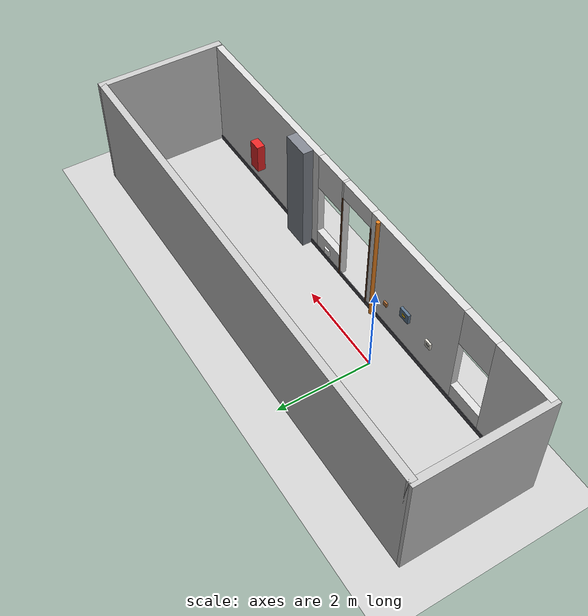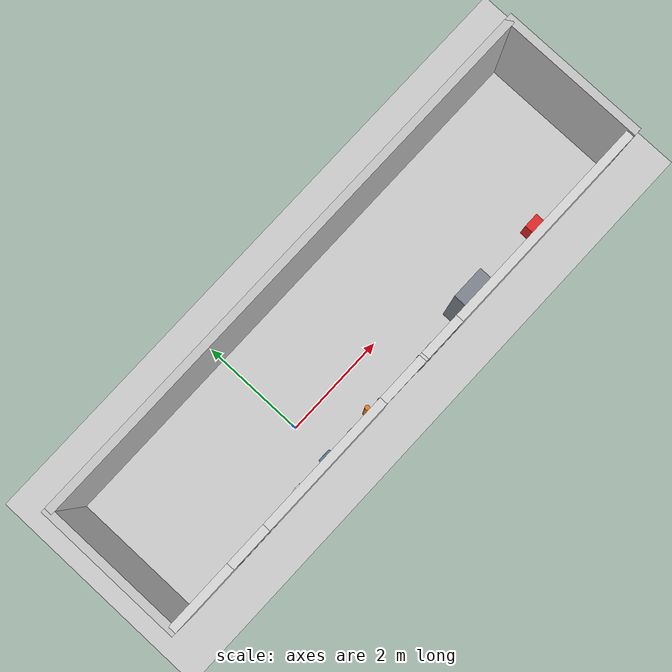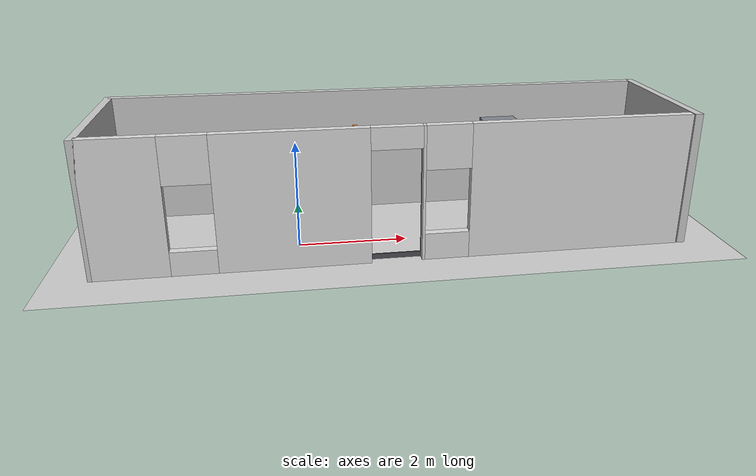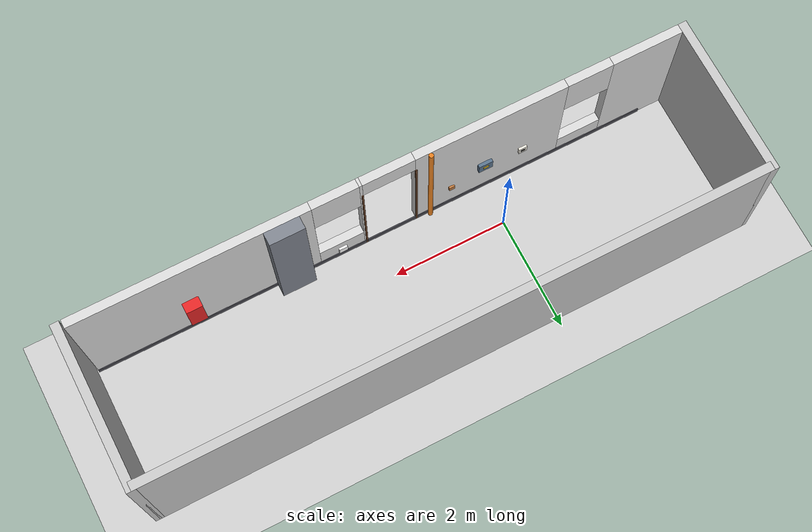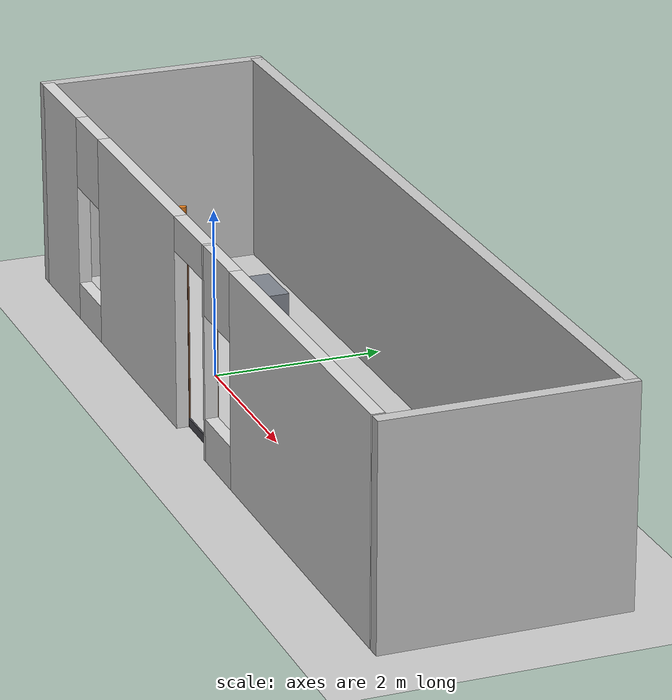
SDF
<?xml version="1.0" ?>
<sdf version="1.6">
  <world name="wall_obstacle_world">

    <!-- Physics settings -->
    <physics type="ode">
      <max_step_size>0.001</max_step_size>
      <real_time_factor>1.0</real_time_factor>
      <real_time_update_rate>1000</real_time_update_rate>
    </physics>

    <!-- Sun / Primary light -->
    <include>
      <uri>model://sun</uri>
    </include>

    <!-- Ground plane -->
    <include>
      <uri>model://ground_plane</uri>
    </include>

    <!-- Additional Ambient Lighting for Wall Inspection -->
    <light name="fill_light_1" type="point">
      <pose>1.5 -0.2 3.0 0 0 0</pose>
      <diffuse>0.8 0.8 0.8 1</diffuse>
      <specular>0.2 0.2 0.2 1</specular>
      <attenuation>
        <range>20</range>
        <constant>0.5</constant>
        <linear>0.05</linear>
        <quadratic>0.01</quadratic>
      </attenuation>
      <cast_shadows>false</cast_shadows>
    </light>

    <light name="fill_light_2" type="point">
      <pose>4.5 -0.2 3.0 0 0 0</pose>
      <diffuse>0.8 0.8 0.8 1</diffuse>
      <specular>0.2 0.2 0.2 1</specular>
      <attenuation>
        <range>20</range>
        <constant>0.5</constant>
        <linear>0.05</linear>
        <quadratic>0.01</quadratic>
      </attenuation>
      <cast_shadows>false</cast_shadows>
    </light>

    <!-- Initial GUI Camera View: Looking at Robot and Wall -->
    <gui>
      <camera name="user_camera">
        <pose>-1.8 1.8 2.2 0 0.45 -0.65</pose>
        <view_controller>orbit</view_controller>
      </camera>
    </gui>

    <!-- INSPECTION WALL SYSTEM                                            -->
    <!-- Baseline wall surface inner face is at Y = -0.750 m               -->
    <!-- Thickness: 0.15 m -> Wall Center at Y = -0.825 m                  -->
    <!-- Height: 2.50 m                                                    -->
    <model name="inspection_wall_system">
      <static>true</static>
      <pose>0 0 0 0 0 0</pose>

      <link name="wall_link">

        <!-- Section A: Wall before cutout (from X = -3.5 to X = -2.2) -->
        <collision name="col_wall_a">
          <pose>-2.85 -0.825 1.25 0 0 0</pose>
          <geometry><box><size>1.30 0.15 2.50</size></box></geometry>
        </collision>
        <visual name="vis_wall_a">
          <pose>-2.85 -0.825 1.25 0 0 0</pose>
          <geometry><box><size>1.30 0.15 2.50</size></box></geometry>
          <material>
            <ambient>0.82 0.82 0.82 1.0</ambient>
            <diffuse>0.85 0.85 0.85 1.0</diffuse>
          </material>
        </visual>

        <!-- Cutout Sill / Lintel: Wall below and above window cutout (X = -2.2 to -1.4) -->
        <!-- Below opening (Z = 0.0 to 0.45) -->
        <collision name="col_wall_window_sill">
          <pose>-1.80 -0.825 0.225 0 0 0</pose>
          <geometry><box><size>0.80 0.15 0.45</size></box></geometry>
        </collision>
        <visual name="vis_wall_window_sill">
          <pose>-1.80 -0.825 0.225 0 0 0</pose>
          <geometry><box><size>0.80 0.15 0.45</size></box></geometry>
          <material>
            <ambient>0.82 0.82 0.82 1.0</ambient>
            <diffuse>0.85 0.85 0.85 1.0</diffuse>
          </material>
        </visual>

        <!-- Above opening (Z = 1.65 to 2.50) -->
        <collision name="col_wall_window_top">
          <pose>-1.80 -0.825 2.075 0 0 0</pose>
          <geometry><box><size>0.80 0.15 0.85</size></box></geometry>
        </collision>
        <visual name="vis_wall_window_top">
          <pose>-1.80 -0.825 2.075 0 0 0</pose>
          <geometry><box><size>0.80 0.15 0.85</size></box></geometry>
          <material>
            <ambient>0.82 0.82 0.82 1.0</ambient>
            <diffuse>0.85 0.85 0.85 1.0</diffuse>
          </material>
        </visual>

        <!-- Section B1a: Wall from X = -1.4 to X = +1.25 (length = 2.65m, center = -0.075m) -->
        <collision name="col_wall_b1a">
          <pose>-0.075 -0.825 1.25 0 0 0</pose>
          <geometry><box><size>2.65 0.15 2.50</size></box></geometry>
        </collision>
        <visual name="vis_wall_b1a">
          <pose>-0.075 -0.825 1.25 0 0 0</pose>
          <geometry><box><size>2.65 0.15 2.50</size></box></geometry>
          <material>
            <ambient>0.82 0.82 0.82 1.0</ambient>
            <diffuse>0.85 0.85 0.85 1.0</diffuse>
          </material>
        </visual>

        <!-- Section B1b: Wall after doorway from X = 2.15 to X = 2.20 (length = 0.05m) -->
        <collision name="col_wall_b1b">
          <pose>2.175 -0.825 1.25 0 0 0</pose>
          <geometry><box><size>0.05 0.15 2.50</size></box></geometry>
        </collision>
        <visual name="vis_wall_b1b">
          <pose>2.175 -0.825 1.25 0 0 0</pose>
          <geometry><box><size>0.05 0.15 2.50</size></box></geometry>
          <material>
            <ambient>0.82 0.82 0.82 1.0</ambient>
            <diffuse>0.85 0.85 0.85 1.0</diffuse>
          </material>
        </visual>

        <!-- Window Cutout 2: From X = 2.2 to X = 3.0 (width 0.80m, center = 2.60m) -->
        <!-- Below window opening (Z = 0.0 to 0.50m) -->
        <collision name="col_window2_sill">
          <pose>2.60 -0.825 0.25 0 0 0</pose>
          <geometry><box><size>0.80 0.15 0.50</size></box></geometry>
        </collision>
        <visual name="vis_window2_sill">
          <pose>2.60 -0.825 0.25 0 0 0</pose>
          <geometry><box><size>0.80 0.15 0.50</size></box></geometry>
          <material>
            <ambient>0.82 0.82 0.82 1.0</ambient>
            <diffuse>0.85 0.85 0.85 1.0</diffuse>
          </material>
        </visual>

        <!-- Above window opening (Z = 1.70 to 2.50m) -->
        <collision name="col_window2_top">
          <pose>2.60 -0.825 2.10 0 0 0</pose>
          <geometry><box><size>0.80 0.15 0.80</size></box></geometry>
        </collision>
        <visual name="vis_window2_top">
          <pose>2.60 -0.825 2.10 0 0 0</pose>
          <geometry><box><size>0.80 0.15 0.80</size></box></geometry>
          <material>
            <ambient>0.82 0.82 0.82 1.0</ambient>
            <diffuse>0.85 0.85 0.85 1.0</diffuse>
          </material>
        </visual>

        <!-- Section B2: Wall from X = 3.0 to X = +7.0 (length = 4.0m, center = 5.00m) -->
        <collision name="col_wall_b2">
          <pose>5.00 -0.825 1.25 0 0 0</pose>
          <geometry><box><size>4.00 0.15 2.50</size></box></geometry>
        </collision>
        <visual name="vis_wall_b2">
          <pose>5.00 -0.825 1.25 0 0 0</pose>
          <geometry><box><size>4.00 0.15 2.50</size></box></geometry>
          <material>
            <ambient>0.82 0.82 0.82 1.0</ambient>
            <diffuse>0.85 0.85 0.85 1.0</diffuse>
          </material>
        </visual>

        <!-- Baseboard strip along wall bottom (for visual contrast) -->
        <visual name="vis_wall_baseboard">
          <pose>2.0 -0.745 0.05 0 0 0</pose>
          <geometry><box><size>10.0 0.02 0.10</size></box></geometry>
          <material>
            <ambient>0.25 0.25 0.28 1.0</ambient>
            <diffuse>0.30 0.30 0.33 1.0</diffuse>
          </material>
        </visual>

        <!-- WALL SURFACE OBSTACLES: Realistic Configurable Wall Elements    -->
        <!-- Baseline wall inner surface is at Y = -0.750 m                  -->

        <!-- OBSTACLE 1: Switchboard (Test 2)                                 -->
        <!-- Protruding 0.04 m from baseline (faces at Y = -0.710 m)          -->
        <!-- Width: 0.15 m, Height: 0.15 m, Center Z: 0.85 m                  -->
        <collision name="col_switchboard_1">
          <pose>-0.70 -0.730 0.85 0 0 0</pose>
          <geometry><box><size>0.15 0.04 0.15</size></box></geometry>
        </collision>
        <visual name="vis_switchboard_1_body">
          <pose>-0.70 -0.730 0.85 0 0 0</pose>
          <geometry><box><size>0.15 0.04 0.15</size></box></geometry>
          <material>
            <ambient>0.92 0.90 0.85 1.0</ambient>
            <diffuse>0.95 0.93 0.88 1.0</diffuse>
          </material>
        </visual>
        <visual name="vis_switchboard_1_switches">
          <pose>-0.70 -0.708 0.85 0 0 0</pose>
          <geometry><box><size>0.08 0.005 0.04</size></box></geometry>
          <material>
            <ambient>0.15 0.15 0.15 1.0</ambient>
            <diffuse>0.20 0.20 0.20 1.0</diffuse>
          </material>
        </visual>

        <!-- OBSTACLE 2: Shallow Wall-Mounted Electrical Box (Junction Box)  -->
        <!-- Protruding 0.06 m from baseline (faces at Y = -0.690 m)          -->
        <!-- Width: 0.25 m, Height: 0.22 m, Center Z: 0.95 m                  -->
        <collision name="col_electrical_box">
          <pose>0.00 -0.720 0.95 0 0 0</pose>
          <geometry><box><size>0.25 0.06 0.22</size></box></geometry>
        </collision>
        <visual name="vis_electrical_box_body">
          <pose>0.00 -0.720 0.95 0 0 0</pose>
          <geometry><box><size>0.25 0.06 0.22</size></box></geometry>
          <material>
            <ambient>0.28 0.35 0.42 1.0</ambient>
            <diffuse>0.35 0.45 0.55 1.0</diffuse>
          </material>
        </visual>
        <visual name="vis_electrical_box_badge">
          <pose>0.00 -0.688 0.95 0 0 0</pose>
          <geometry><box><size>0.09 0.005 0.06</size></box></geometry>
          <material>
            <ambient>0.95 0.75 0.10 1.0</ambient>
            <diffuse>0.98 0.80 0.12 1.0</diffuse>
          </material>
        </visual>

        <!-- OBSTACLE 3: Minor Wall Protrusion (Test 3)                       -->
        <!-- Shallow surface projection: 0.035 m (3.5 cm)                     -->
        <!-- Width: 0.10 m, Height: 0.10 m, Center Z: 0.65 m                  -->
        <collision name="col_minor_protrusion">
          <pose>0.60 -0.7325 0.65 0 0 0</pose>
          <geometry><box><size>0.10 0.035 0.10</size></box></geometry>
        </collision>
        <visual name="vis_minor_protrusion">
          <pose>0.60 -0.7325 0.65 0 0 0</pose>
          <geometry><box><size>0.10 0.035 0.10</size></box></geometry>
          <material>
            <ambient>0.65 0.40 0.20 1.0</ambient>
            <diffuse>0.75 0.48 0.25 1.0</diffuse>
          </material>
        </visual>

        <!-- OBSTACLE 4: Vertical Conduit Pipe (at X = 1.0 m)                -->
        <!-- Protruding 0.08 m from wall                                      -->
        <collision name="col_obs2_conduit">
          <pose>1.00 -0.710 1.25 0 0 0</pose>
          <geometry><box><size>0.08 0.08 2.50</size></box></geometry>
        </collision>
        <visual name="vis_obs2_conduit">
          <pose>1.00 -0.710 1.25 0 0 0</pose>
          <geometry><cylinder><radius>0.04</radius><length>2.50</length></cylinder></geometry>
          <material>
            <ambient>0.85 0.45 0.1 1.0</ambient>
            <diffuse>0.90 0.50 0.12 1.0</diffuse>
          </material>
        </visual>

        <!-- DOORWAY OPENING: X = 1.50 m (width: 0.90 m, Z: 0.0 to 2.10 m)   -->
        <!-- Section above Doorway Lintel: Z = 2.10 to 2.50 m                 -->
        <collision name="col_doorway_lintel">
          <pose>1.70 -0.825 2.30 0 0 0</pose>
          <geometry><box><size>0.90 0.15 0.40</size></box></geometry>
        </collision>
        <visual name="vis_doorway_lintel">
          <pose>1.70 -0.825 2.30 0 0 0</pose>
          <geometry><box><size>0.90 0.15 0.40</size></box></geometry>
          <material>
            <ambient>0.82 0.82 0.82 1.0</ambient>
            <diffuse>0.85 0.85 0.85 1.0</diffuse>
          </material>
        </visual>
        <!-- Door Frame outline -->
        <visual name="vis_door_frame_left">
          <pose>1.24 -0.745 1.05 0 0 0</pose>
          <geometry><box><size>0.03 0.02 2.10</size></box></geometry>
          <material><ambient>0.3 0.2 0.1 1</ambient><diffuse>0.4 0.25 0.15 1</diffuse></material>
        </visual>
        <visual name="vis_door_frame_right">
          <pose>2.16 -0.745 1.05 0 0 0</pose>
          <geometry><box><size>0.03 0.02 2.10</size></box></geometry>
          <material><ambient>0.3 0.2 0.1 1</ambient><diffuse>0.4 0.25 0.15 1</diffuse></material>
        </visual>

        <!-- MULTI-OBSTACLE SECTION (Test 4): Window + Multiple Switchboards  -->
        <!-- Centered around X = 3.5 m                                        -->
        <!-- Switchboard below Window 2: X = 2.60 m, Z = 0.25 m               -->
        <collision name="col_multi_switchboard_1">
          <pose>2.60 -0.730 0.25 0 0 0</pose>
          <geometry><box><size>0.15 0.04 0.15</size></box></geometry>
        </collision>
        <visual name="vis_multi_switchboard_1">
          <pose>2.60 -0.730 0.25 0 0 0</pose>
          <geometry><box><size>0.15 0.04 0.15</size></box></geometry>
          <material>
            <ambient>0.95 0.95 0.95 1.0</ambient>
            <diffuse>0.98 0.98 0.98 1.0</diffuse>
          </material>
        </visual>

        <!-- Switchboard on Wall Column: X = 3.50 m, Z = 0.90 m               -->
        <collision name="col_multi_switchboard_2">
          <pose>3.50 -0.615 0.90 0 0 0</pose>
          <geometry><box><size>0.14 0.04 0.14</size></box></geometry>
        </collision>
        <visual name="vis_multi_switchboard_2">
          <pose>3.50 -0.615 0.90 0 0 0</pose>
          <geometry><box><size>0.14 0.04 0.14</size></box></geometry>
          <material>
            <ambient>0.95 0.70 0.20 1.0</ambient>
            <diffuse>0.98 0.75 0.22 1.0</diffuse>
          </material>
        </visual>

        <!-- WALL SURFACE OBSTACLE 3: Wall Column Bump-out (at X = 3.5 m)    -->
        <!-- Structural pilaster protruding 0.22 m from baseline             -->
        <collision name="col_obs3_column">
          <pose>3.50 -0.64 1.25 0 0 0</pose>
          <geometry><box><size>0.60 0.22 2.50</size></box></geometry>
        </collision>
        <visual name="vis_obs3_column">
          <pose>3.50 -0.64 1.25 0 0 0</pose>
          <geometry><box><size>0.60 0.22 2.50</size></box></geometry>
          <material>
            <ambient>0.4 0.42 0.45 1.0</ambient>
            <diffuse>0.5 0.52 0.56 1.0</diffuse>
          </material>
        </visual>

        <!-- WALL SURFACE OBSTACLE 4: Fire Safety Cabinet (at X = 5.2 m)     -->
        <!-- Red cabinet protruding 0.18 m                                   -->
        <collision name="col_obs4_fire_cabinet">
          <pose>5.20 -0.66 0.90 0 0 0</pose>
          <geometry><box><size>0.28 0.18 0.65</size></box></geometry>
        </collision>
        <visual name="vis_obs4_fire_cabinet">
          <pose>5.20 -0.66 0.90 0 0 0</pose>
          <geometry><box><size>0.28 0.18 0.65</size></box></geometry>
          <material>
            <ambient>0.85 0.12 0.12 1.0</ambient>
            <diffuse>0.90 0.15 0.15 1.0</diffuse>
          </material>
        </visual>

        <!-- Corridor Back Wall (at Y = +1.8 m) -->
        <collision name="col_corridor_back">
          <pose>1.80 1.80 1.25 0 0 0</pose>
          <geometry><box><size>10.60 0.15 2.50</size></box></geometry>
        </collision>
        <visual name="vis_corridor_back">
          <pose>1.80 1.80 1.25 0 0 0</pose>
          <geometry><box><size>10.60 0.15 2.50</size></box></geometry>
          <material>
            <ambient>0.75 0.75 0.75 1.0</ambient>
            <diffuse>0.78 0.78 0.78 1.0</diffuse>
          </material>
        </visual>

        <!-- Corridor End Wall Left (at X = -3.5 m) -->
        <collision name="col_corridor_left">
          <pose>-3.50 0.4875 1.25 0 0 0</pose>
          <geometry><box><size>0.15 2.775 2.50</size></box></geometry>
        </collision>
        <visual name="vis_corridor_left">
          <pose>-3.50 0.4875 1.25 0 0 0</pose>
          <geometry><box><size>0.15 2.775 2.50</size></box></geometry>
          <material>
            <ambient>0.75 0.75 0.75 1.0</ambient>
            <diffuse>0.78 0.78 0.78 1.0</diffuse>
          </material>
        </visual>

        <!-- Corridor End Wall Right (at X = +7.1 m) -->
        <collision name="col_corridor_right">
          <pose>7.10 0.4875 1.25 0 0 0</pose>
          <geometry><box><size>0.15 2.775 2.50</size></box></geometry>
        </collision>
        <visual name="vis_corridor_right">
          <pose>7.10 0.4875 1.25 0 0 0</pose>
          <geometry><box><size>0.15 2.775 2.50</size></box></geometry>
          <material>
            <ambient>0.75 0.75 0.75 1.0</ambient>
            <diffuse>0.78 0.78 0.78 1.0</diffuse>
          </material>
        </visual>

      </link>
    </model>

  </world>
</sdf>
